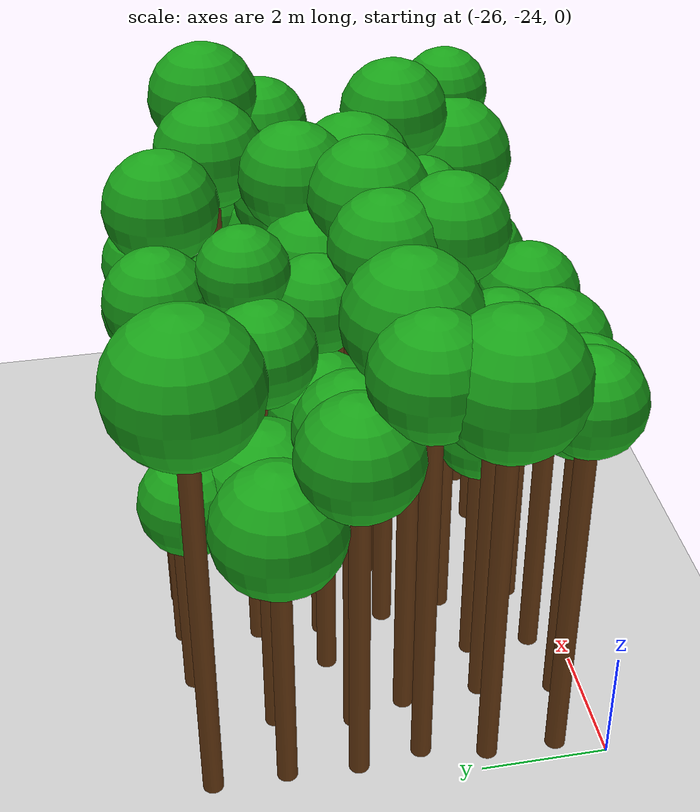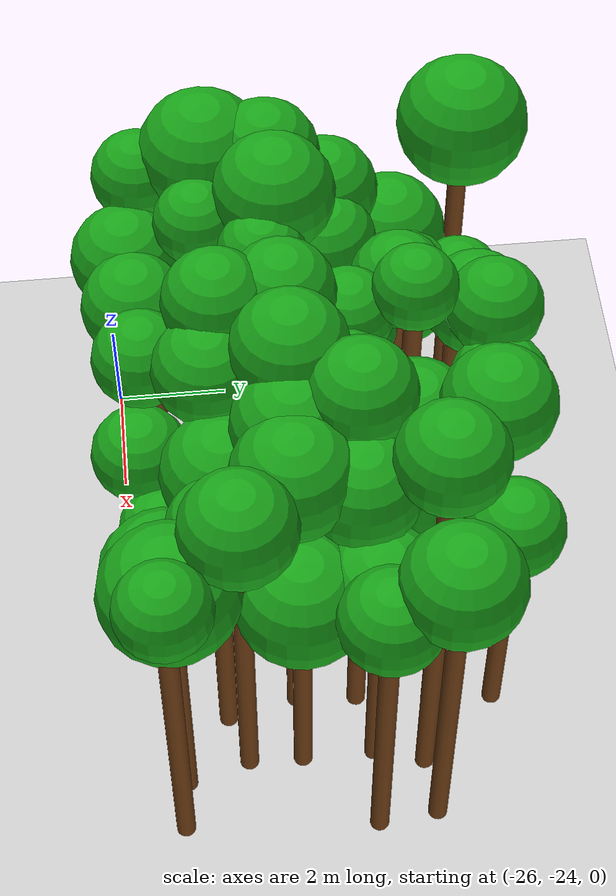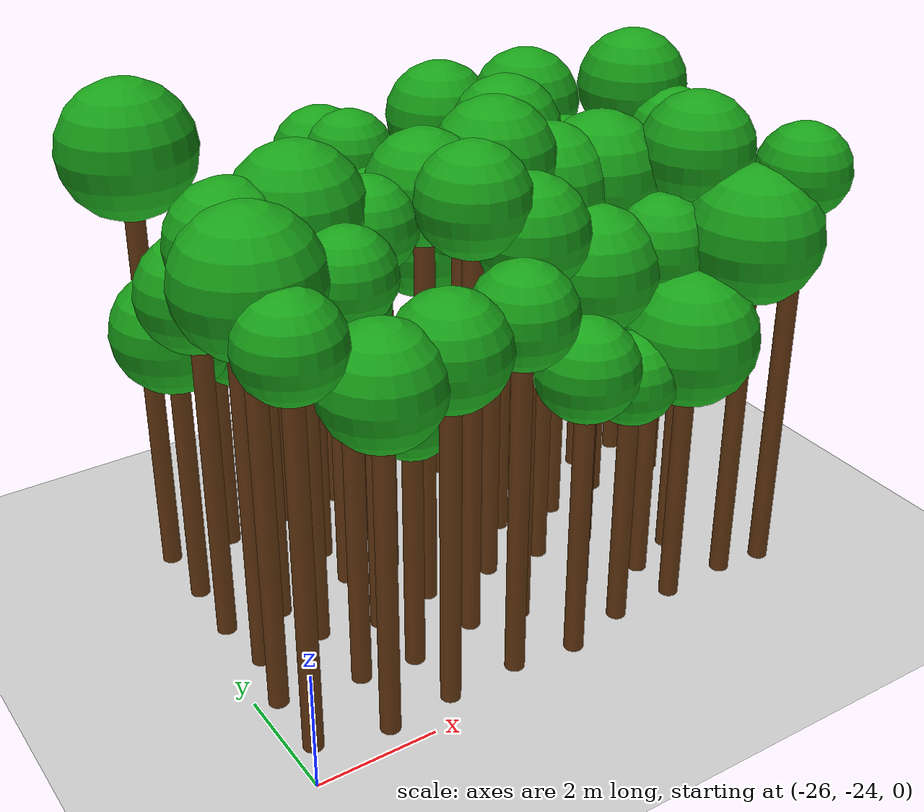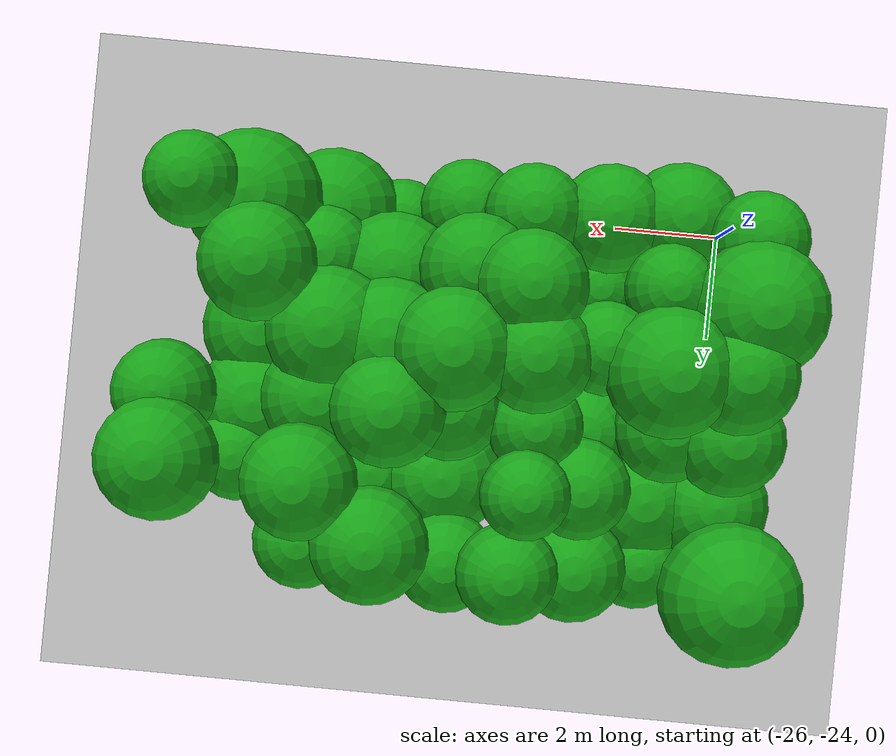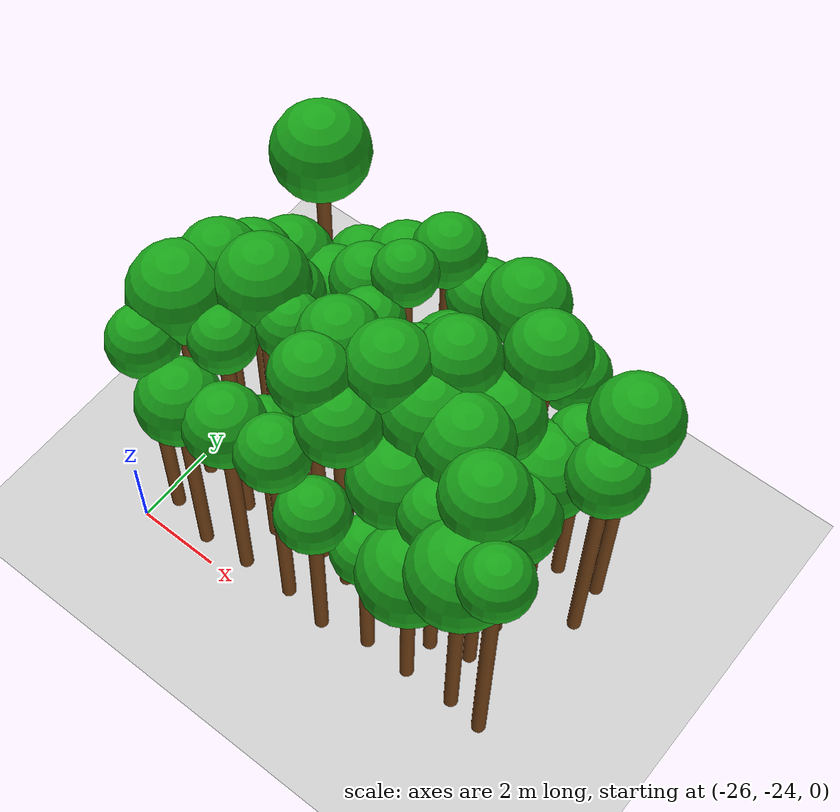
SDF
<sdf version="1.6">
 <world name="forest_world">
  <include><uri>model://sun</uri></include>
  <include><uri>model://ground_plane</uri></include>
  <model name="tree_226_trunk">
   <static>true</static>
   <pose>-25.66 -23.26 3.09 0 0 0</pose>
   <link name="link">
    <collision name="collision">
     <geometry><cylinder><radius>0.16</radius><length>6.19</length></cylinder></geometry>
    </collision>
    <visual name="visual">
     <geometry><cylinder><radius>0.16</radius><length>6.19</length></cylinder></geometry>
     <material><ambient>0.35 0.20 0.05 1</ambient><diffuse>0.45 0.25 0.08 1</diffuse></material>
    </visual>
   </link>
  </model>
  <model name="tree_226_leaf">
   <static>true</static>
   <pose>-25.66 -23.26 6.65 0 0 0</pose>
   <link name="link">
    <collision name="collision"><geometry><sphere><radius>0.78</radius></sphere></geometry></collision>
    <visual name="visual">
     <geometry><sphere><radius>0.78</radius></sphere></geometry>
     <material><ambient>0.05 0.45 0.05 1</ambient><diffuse>0.10 0.65 0.10 1</diffuse></material>
    </visual>
   </link>
  </model>
  <model name="tree_227_trunk">
   <static>true</static>
   <pose>-25.66 -22.15 3.23 0 0 0</pose>
   <link name="link">
    <collision name="collision">
     <geometry><cylinder><radius>0.16</radius><length>6.45</length></cylinder></geometry>
    </collision>
    <visual name="visual">
     <geometry><cylinder><radius>0.16</radius><length>6.45</length></cylinder></geometry>
     <material><ambient>0.35 0.20 0.05 1</ambient><diffuse>0.45 0.25 0.08 1</diffuse></material>
    </visual>
   </link>
  </model>
  <model name="tree_227_leaf">
   <static>true</static>
   <pose>-25.66 -22.15 7.10 0 0 0</pose>
   <link name="link">
    <collision name="collision"><geometry><sphere><radius>1.08</radius></sphere></geometry></collision>
    <visual name="visual">
     <geometry><sphere><radius>1.08</radius></sphere></geometry>
     <material><ambient>0.05 0.45 0.05 1</ambient><diffuse>0.10 0.65 0.10 1</diffuse></material>
    </visual>
   </link>
  </model>
  <model name="tree_228_trunk">
   <static>true</static>
   <pose>-25.44 -21.14 3.33 0 0 0</pose>
   <link name="link">
    <collision name="collision">
     <geometry><cylinder><radius>0.16</radius><length>6.65</length></cylinder></geometry>
    </collision>
    <visual name="visual">
     <geometry><cylinder><radius>0.16</radius><length>6.65</length></cylinder></geometry>
     <material><ambient>0.35 0.20 0.05 1</ambient><diffuse>0.45 0.25 0.08 1</diffuse></material>
    </visual>
   </link>
  </model>
  <model name="tree_228_leaf">
   <static>true</static>
   <pose>-25.44 -21.14 7.21 0 0 0</pose>
   <link name="link">
    <collision name="collision"><geometry><sphere><radius>0.92</radius></sphere></geometry></collision>
    <visual name="visual">
     <geometry><sphere><radius>0.92</radius></sphere></geometry>
     <material><ambient>0.05 0.45 0.05 1</ambient><diffuse>0.10 0.65 0.10 1</diffuse></material>
    </visual>
   </link>
  </model>
  <model name="tree_229_trunk">
   <static>true</static>
   <pose>-25.57 -20.13 2.77 0 0 0</pose>
   <link name="link">
    <collision name="collision">
     <geometry><cylinder><radius>0.16</radius><length>5.55</length></cylinder></geometry>
    </collision>
    <visual name="visual">
     <geometry><cylinder><radius>0.16</radius><length>5.55</length></cylinder></geometry>
     <material><ambient>0.35 0.20 0.05 1</ambient><diffuse>0.45 0.25 0.08 1</diffuse></material>
    </visual>
   </link>
  </model>
  <model name="tree_229_leaf">
   <static>true</static>
   <pose>-25.57 -20.13 6.09 0 0 0</pose>
   <link name="link">
    <collision name="collision"><geometry><sphere><radius>0.91</radius></sphere></geometry></collision>
    <visual name="visual">
     <geometry><sphere><radius>0.91</radius></sphere></geometry>
     <material><ambient>0.05 0.45 0.05 1</ambient><diffuse>0.10 0.65 0.10 1</diffuse></material>
    </visual>
   </link>
  </model>
  <model name="tree_230_trunk">
   <static>true</static>
   <pose>-25.53 -19.01 2.20 0 0 0</pose>
   <link name="link">
    <collision name="collision">
     <geometry><cylinder><radius>0.16</radius><length>4.39</length></cylinder></geometry>
    </collision>
    <visual name="visual">
     <geometry><cylinder><radius>0.16</radius><length>4.39</length></cylinder></geometry>
     <material><ambient>0.35 0.20 0.05 1</ambient><diffuse>0.45 0.25 0.08 1</diffuse></material>
    </visual>
   </link>
  </model>
  <model name="tree_230_leaf">
   <static>true</static>
   <pose>-25.53 -19.01 4.98 0 0 0</pose>
   <link name="link">
    <collision name="collision"><geometry><sphere><radius>0.99</radius></sphere></geometry></collision>
    <visual name="visual">
     <geometry><sphere><radius>0.99</radius></sphere></geometry>
     <material><ambient>0.05 0.45 0.05 1</ambient><diffuse>0.10 0.65 0.10 1</diffuse></material>
    </visual>
   </link>
  </model>
  <model name="tree_231_trunk">
   <static>true</static>
   <pose>-25.54 -17.86 3.44 0 0 0</pose>
   <link name="link">
    <collision name="collision">
     <geometry><cylinder><radius>0.16</radius><length>6.88</length></cylinder></geometry>
    </collision>
    <visual name="visual">
     <geometry><cylinder><radius>0.16</radius><length>6.88</length></cylinder></geometry>
     <material><ambient>0.35 0.20 0.05 1</ambient><diffuse>0.45 0.25 0.08 1</diffuse></material>
    </visual>
   </link>
  </model>
  <model name="tree_231_leaf">
   <static>true</static>
   <pose>-25.54 -17.86 7.53 0 0 0</pose>
   <link name="link">
    <collision name="collision"><geometry><sphere><radius>1.09</radius></sphere></geometry></collision>
    <visual name="visual">
     <geometry><sphere><radius>1.09</radius></sphere></geometry>
     <material><ambient>0.05 0.45 0.05 1</ambient><diffuse>0.10 0.65 0.10 1</diffuse></material>
    </visual>
   </link>
  </model>
  <model name="tree_281_trunk">
   <static>true</static>
   <pose>-24.52 -23.56 2.67 0 0 0</pose>
   <link name="link">
    <collision name="collision">
     <geometry><cylinder><radius>0.16</radius><length>5.33</length></cylinder></geometry>
    </collision>
    <visual name="visual">
     <geometry><cylinder><radius>0.16</radius><length>5.33</length></cylinder></geometry>
     <material><ambient>0.35 0.20 0.05 1</ambient><diffuse>0.45 0.25 0.08 1</diffuse></material>
    </visual>
   </link>
  </model>
  <model name="tree_281_leaf">
   <static>true</static>
   <pose>-24.52 -23.56 5.88 0 0 0</pose>
   <link name="link">
    <collision name="collision"><geometry><sphere><radius>0.92</radius></sphere></geometry></collision>
    <visual name="visual">
     <geometry><sphere><radius>0.92</radius></sphere></geometry>
     <material><ambient>0.05 0.45 0.05 1</ambient><diffuse>0.10 0.65 0.10 1</diffuse></material>
    </visual>
   </link>
  </model>
  <model name="tree_282_trunk">
   <static>true</static>
   <pose>-24.32 -22.35 3.23 0 0 0</pose>
   <link name="link">
    <collision name="collision">
     <geometry><cylinder><radius>0.16</radius><length>6.46</length></cylinder></geometry>
    </collision>
    <visual name="visual">
     <geometry><cylinder><radius>0.16</radius><length>6.46</length></cylinder></geometry>
     <material><ambient>0.35 0.20 0.05 1</ambient><diffuse>0.45 0.25 0.08 1</diffuse></material>
    </visual>
   </link>
  </model>
  <model name="tree_282_leaf">
   <static>true</static>
   <pose>-24.32 -22.35 6.90 0 0 0</pose>
   <link name="link">
    <collision name="collision"><geometry><sphere><radius>0.72</radius></sphere></geometry></collision>
    <visual name="visual">
     <geometry><sphere><radius>0.72</radius></sphere></geometry>
     <material><ambient>0.05 0.45 0.05 1</ambient><diffuse>0.10 0.65 0.10 1</diffuse></material>
    </visual>
   </link>
  </model>
  <model name="tree_283_trunk">
   <static>true</static>
   <pose>-24.37 -21.08 3.40 0 0 0</pose>
   <link name="link">
    <collision name="collision">
     <geometry><cylinder><radius>0.16</radius><length>6.80</length></cylinder></geometry>
    </collision>
    <visual name="visual">
     <geometry><cylinder><radius>0.16</radius><length>6.80</length></cylinder></geometry>
     <material><ambient>0.35 0.20 0.05 1</ambient><diffuse>0.45 0.25 0.08 1</diffuse></material>
    </visual>
   </link>
  </model>
  <model name="tree_283_leaf">
   <static>true</static>
   <pose>-24.37 -21.08 7.41 0 0 0</pose>
   <link name="link">
    <collision name="collision"><geometry><sphere><radius>1.01</radius></sphere></geometry></collision>
    <visual name="visual">
     <geometry><sphere><radius>1.01</radius></sphere></geometry>
     <material><ambient>0.05 0.45 0.05 1</ambient><diffuse>0.10 0.65 0.10 1</diffuse></material>
    </visual>
   </link>
  </model>
  <model name="tree_284_trunk">
   <static>true</static>
   <pose>-24.62 -20.22 2.65 0 0 0</pose>
   <link name="link">
    <collision name="collision">
     <geometry><cylinder><radius>0.16</radius><length>5.30</length></cylinder></geometry>
    </collision>
    <visual name="visual">
     <geometry><cylinder><radius>0.16</radius><length>5.30</length></cylinder></geometry>
     <material><ambient>0.35 0.20 0.05 1</ambient><diffuse>0.45 0.25 0.08 1</diffuse></material>
    </visual>
   </link>
  </model>
  <model name="tree_284_leaf">
   <static>true</static>
   <pose>-24.62 -20.22 5.82 0 0 0</pose>
   <link name="link">
    <collision name="collision"><geometry><sphere><radius>0.88</radius></sphere></geometry></collision>
    <visual name="visual">
     <geometry><sphere><radius>0.88</radius></sphere></geometry>
     <material><ambient>0.05 0.45 0.05 1</ambient><diffuse>0.10 0.65 0.10 1</diffuse></material>
    </visual>
   </link>
  </model>
  <model name="tree_285_trunk">
   <static>true</static>
   <pose>-24.39 -18.99 2.09 0 0 0</pose>
   <link name="link">
    <collision name="collision">
     <geometry><cylinder><radius>0.16</radius><length>4.17</length></cylinder></geometry>
    </collision>
    <visual name="visual">
     <geometry><cylinder><radius>0.16</radius><length>4.17</length></cylinder></geometry>
     <material><ambient>0.35 0.20 0.05 1</ambient><diffuse>0.45 0.25 0.08 1</diffuse></material>
    </visual>
   </link>
  </model>
  <model name="tree_285_leaf">
   <static>true</static>
   <pose>-24.39 -18.99 4.79 0 0 0</pose>
   <link name="link">
    <collision name="collision"><geometry><sphere><radius>1.03</radius></sphere></geometry></collision>
    <visual name="visual">
     <geometry><sphere><radius>1.03</radius></sphere></geometry>
     <material><ambient>0.05 0.45 0.05 1</ambient><diffuse>0.10 0.65 0.10 1</diffuse></material>
    </visual>
   </link>
  </model>
  <model name="tree_286_trunk">
   <static>true</static>
   <pose>-24.44 -17.92 2.14 0 0 0</pose>
   <link name="link">
    <collision name="collision">
     <geometry><cylinder><radius>0.16</radius><length>4.27</length></cylinder></geometry>
    </collision>
    <visual name="visual">
     <geometry><cylinder><radius>0.16</radius><length>4.27</length></cylinder></geometry>
     <material><ambient>0.35 0.20 0.05 1</ambient><diffuse>0.45 0.25 0.08 1</diffuse></material>
    </visual>
   </link>
  </model>
  <model name="tree_286_leaf">
   <static>true</static>
   <pose>-24.44 -17.92 4.74 0 0 0</pose>
   <link name="link">
    <collision name="collision"><geometry><sphere><radius>0.78</radius></sphere></geometry></collision>
    <visual name="visual">
     <geometry><sphere><radius>0.78</radius></sphere></geometry>
     <material><ambient>0.05 0.45 0.05 1</ambient><diffuse>0.10 0.65 0.10 1</diffuse></material>
    </visual>
   </link>
  </model>
  <model name="tree_336_trunk">
   <static>true</static>
   <pose>-23.39 -23.46 2.74 0 0 0</pose>
   <link name="link">
    <collision name="collision">
     <geometry><cylinder><radius>0.16</radius><length>5.48</length></cylinder></geometry>
    </collision>
    <visual name="visual">
     <geometry><cylinder><radius>0.16</radius><length>5.48</length></cylinder></geometry>
     <material><ambient>0.35 0.20 0.05 1</ambient><diffuse>0.45 0.25 0.08 1</diffuse></material>
    </visual>
   </link>
  </model>
  <model name="tree_336_leaf">
   <static>true</static>
   <pose>-23.39 -23.46 6.01 0 0 0</pose>
   <link name="link">
    <collision name="collision"><geometry><sphere><radius>0.88</radius></sphere></geometry></collision>
    <visual name="visual">
     <geometry><sphere><radius>0.88</radius></sphere></geometry>
     <material><ambient>0.05 0.45 0.05 1</ambient><diffuse>0.10 0.65 0.10 1</diffuse></material>
    </visual>
   </link>
  </model>
  <model name="tree_337_trunk">
   <static>true</static>
   <pose>-23.39 -22.43 2.06 0 0 0</pose>
   <link name="link">
    <collision name="collision">
     <geometry><cylinder><radius>0.16</radius><length>4.11</length></cylinder></geometry>
    </collision>
    <visual name="visual">
     <geometry><cylinder><radius>0.16</radius><length>4.11</length></cylinder></geometry>
     <material><ambient>0.35 0.20 0.05 1</ambient><diffuse>0.45 0.25 0.08 1</diffuse></material>
    </visual>
   </link>
  </model>
  <model name="tree_337_leaf">
   <static>true</static>
   <pose>-23.39 -22.43 4.54 0 0 0</pose>
   <link name="link">
    <collision name="collision"><geometry><sphere><radius>0.71</radius></sphere></geometry></collision>
    <visual name="visual">
     <geometry><sphere><radius>0.71</radius></sphere></geometry>
     <material><ambient>0.05 0.45 0.05 1</ambient><diffuse>0.10 0.65 0.10 1</diffuse></material>
    </visual>
   </link>
  </model>
  <model name="tree_338_trunk">
   <static>true</static>
   <pose>-23.40 -21.36 3.32 0 0 0</pose>
   <link name="link">
    <collision name="collision">
     <geometry><cylinder><radius>0.16</radius><length>6.63</length></cylinder></geometry>
    </collision>
    <visual name="visual">
     <geometry><cylinder><radius>0.16</radius><length>6.63</length></cylinder></geometry>
     <material><ambient>0.35 0.20 0.05 1</ambient><diffuse>0.45 0.25 0.08 1</diffuse></material>
    </visual>
   </link>
  </model>
  <model name="tree_338_leaf">
   <static>true</static>
   <pose>-23.40 -21.36 7.07 0 0 0</pose>
   <link name="link">
    <collision name="collision"><geometry><sphere><radius>0.73</radius></sphere></geometry></collision>
    <visual name="visual">
     <geometry><sphere><radius>0.73</radius></sphere></geometry>
     <material><ambient>0.05 0.45 0.05 1</ambient><diffuse>0.10 0.65 0.10 1</diffuse></material>
    </visual>
   </link>
  </model>
  <model name="tree_339_trunk">
   <static>true</static>
   <pose>-23.27 -20.02 2.35 0 0 0</pose>
   <link name="link">
    <collision name="collision">
     <geometry><cylinder><radius>0.16</radius><length>4.69</length></cylinder></geometry>
    </collision>
    <visual name="visual">
     <geometry><cylinder><radius>0.16</radius><length>4.69</length></cylinder></geometry>
     <material><ambient>0.35 0.20 0.05 1</ambient><diffuse>0.45 0.25 0.08 1</diffuse></material>
    </visual>
   </link>
  </model>
  <model name="tree_339_leaf">
   <static>true</static>
   <pose>-23.27 -20.02 5.23 0 0 0</pose>
   <link name="link">
    <collision name="collision"><geometry><sphere><radius>0.89</radius></sphere></geometry></collision>
    <visual name="visual">
     <geometry><sphere><radius>0.89</radius></sphere></geometry>
     <material><ambient>0.05 0.45 0.05 1</ambient><diffuse>0.10 0.65 0.10 1</diffuse></material>
    </visual>
   </link>
  </model>
  <model name="tree_340_trunk">
   <static>true</static>
   <pose>-23.26 -19.15 2.93 0 0 0</pose>
   <link name="link">
    <collision name="collision">
     <geometry><cylinder><radius>0.16</radius><length>5.85</length></cylinder></geometry>
    </collision>
    <visual name="visual">
     <geometry><cylinder><radius>0.16</radius><length>5.85</length></cylinder></geometry>
     <material><ambient>0.35 0.20 0.05 1</ambient><diffuse>0.45 0.25 0.08 1</diffuse></material>
    </visual>
   </link>
  </model>
  <model name="tree_340_leaf">
   <static>true</static>
   <pose>-23.26 -19.15 6.34 0 0 0</pose>
   <link name="link">
    <collision name="collision"><geometry><sphere><radius>0.81</radius></sphere></geometry></collision>
    <visual name="visual">
     <geometry><sphere><radius>0.81</radius></sphere></geometry>
     <material><ambient>0.05 0.45 0.05 1</ambient><diffuse>0.10 0.65 0.10 1</diffuse></material>
    </visual>
   </link>
  </model>
  <model name="tree_341_trunk">
   <static>true</static>
   <pose>-23.31 -17.81 2.50 0 0 0</pose>
   <link name="link">
    <collision name="collision">
     <geometry><cylinder><radius>0.16</radius><length>5.00</length></cylinder></geometry>
    </collision>
    <visual name="visual">
     <geometry><cylinder><radius>0.16</radius><length>5.00</length></cylinder></geometry>
     <material><ambient>0.35 0.20 0.05 1</ambient><diffuse>0.45 0.25 0.08 1</diffuse></material>
    </visual>
   </link>
  </model>
  <model name="tree_341_leaf">
   <static>true</static>
   <pose>-23.31 -17.81 5.53 0 0 0</pose>
   <link name="link">
    <collision name="collision"><geometry><sphere><radius>0.89</radius></sphere></geometry></collision>
    <visual name="visual">
     <geometry><sphere><radius>0.89</radius></sphere></geometry>
     <material><ambient>0.05 0.45 0.05 1</ambient><diffuse>0.10 0.65 0.10 1</diffuse></material>
    </visual>
   </link>
  </model>
  <model name="tree_391_trunk">
   <static>true</static>
   <pose>-22.16 -23.41 2.85 0 0 0</pose>
   <link name="link">
    <collision name="collision">
     <geometry><cylinder><radius>0.16</radius><length>5.70</length></cylinder></geometry>
    </collision>
    <visual name="visual">
     <geometry><cylinder><radius>0.16</radius><length>5.70</length></cylinder></geometry>
     <material><ambient>0.35 0.20 0.05 1</ambient><diffuse>0.45 0.25 0.08 1</diffuse></material>
    </visual>
   </link>
  </model>
  <model name="tree_391_leaf">
   <static>true</static>
   <pose>-22.16 -23.41 6.18 0 0 0</pose>
   <link name="link">
    <collision name="collision"><geometry><sphere><radius>0.80</radius></sphere></geometry></collision>
    <visual name="visual">
     <geometry><sphere><radius>0.80</radius></sphere></geometry>
     <material><ambient>0.05 0.45 0.05 1</ambient><diffuse>0.10 0.65 0.10 1</diffuse></material>
    </visual>
   </link>
  </model>
  <model name="tree_392_trunk">
   <static>true</static>
   <pose>-22.18 -22.18 3.47 0 0 0</pose>
   <link name="link">
    <collision name="collision">
     <geometry><cylinder><radius>0.16</radius><length>6.94</length></cylinder></geometry>
    </collision>
    <visual name="visual">
     <geometry><cylinder><radius>0.16</radius><length>6.94</length></cylinder></geometry>
     <material><ambient>0.35 0.20 0.05 1</ambient><diffuse>0.45 0.25 0.08 1</diffuse></material>
    </visual>
   </link>
  </model>
  <model name="tree_392_leaf">
   <static>true</static>
   <pose>-22.18 -22.18 7.46 0 0 0</pose>
   <link name="link">
    <collision name="collision"><geometry><sphere><radius>0.86</radius></sphere></geometry></collision>
    <visual name="visual">
     <geometry><sphere><radius>0.86</radius></sphere></geometry>
     <material><ambient>0.05 0.45 0.05 1</ambient><diffuse>0.10 0.65 0.10 1</diffuse></material>
    </visual>
   </link>
  </model>
  <model name="tree_393_trunk">
   <static>true</static>
   <pose>-22.35 -21.14 3.41 0 0 0</pose>
   <link name="link">
    <collision name="collision">
     <geometry><cylinder><radius>0.16</radius><length>6.81</length></cylinder></geometry>
    </collision>
    <visual name="visual">
     <geometry><cylinder><radius>0.16</radius><length>6.81</length></cylinder></geometry>
     <material><ambient>0.35 0.20 0.05 1</ambient><diffuse>0.45 0.25 0.08 1</diffuse></material>
    </visual>
   </link>
  </model>
  <model name="tree_393_leaf">
   <static>true</static>
   <pose>-22.35 -21.14 7.34 0 0 0</pose>
   <link name="link">
    <collision name="collision"><geometry><sphere><radius>0.88</radius></sphere></geometry></collision>
    <visual name="visual">
     <geometry><sphere><radius>0.88</radius></sphere></geometry>
     <material><ambient>0.05 0.45 0.05 1</ambient><diffuse>0.10 0.65 0.10 1</diffuse></material>
    </visual>
   </link>
  </model>
  <model name="tree_394_trunk">
   <static>true</static>
   <pose>-22.46 -20.07 3.05 0 0 0</pose>
   <link name="link">
    <collision name="collision">
     <geometry><cylinder><radius>0.16</radius><length>6.10</length></cylinder></geometry>
    </collision>
    <visual name="visual">
     <geometry><cylinder><radius>0.16</radius><length>6.10</length></cylinder></geometry>
     <material><ambient>0.35 0.20 0.05 1</ambient><diffuse>0.45 0.25 0.08 1</diffuse></material>
    </visual>
   </link>
  </model>
  <model name="tree_394_leaf">
   <static>true</static>
   <pose>-22.46 -20.07 6.56 0 0 0</pose>
   <link name="link">
    <collision name="collision"><geometry><sphere><radius>0.76</radius></sphere></geometry></collision>
    <visual name="visual">
     <geometry><sphere><radius>0.76</radius></sphere></geometry>
     <material><ambient>0.05 0.45 0.05 1</ambient><diffuse>0.10 0.65 0.10 1</diffuse></material>
    </visual>
   </link>
  </model>
  <model name="tree_395_trunk">
   <static>true</static>
   <pose>-22.38 -19.02 3.38 0 0 0</pose>
   <link name="link">
    <collision name="collision">
     <geometry><cylinder><radius>0.16</radius><length>6.76</length></cylinder></geometry>
    </collision>
    <visual name="visual">
     <geometry><cylinder><radius>0.16</radius><length>6.76</length></cylinder></geometry>
     <material><ambient>0.35 0.20 0.05 1</ambient><diffuse>0.45 0.25 0.08 1</diffuse></material>
    </visual>
   </link>
  </model>
  <model name="tree_395_leaf">
   <static>true</static>
   <pose>-22.38 -19.02 7.18 0 0 0</pose>
   <link name="link">
    <collision name="collision"><geometry><sphere><radius>0.70</radius></sphere></geometry></collision>
    <visual name="visual">
     <geometry><sphere><radius>0.70</radius></sphere></geometry>
     <material><ambient>0.05 0.45 0.05 1</ambient><diffuse>0.10 0.65 0.10 1</diffuse></material>
    </visual>
   </link>
  </model>
  <model name="tree_396_trunk">
   <static>true</static>
   <pose>-22.23 -17.76 3.14 0 0 0</pose>
   <link name="link">
    <collision name="collision">
     <geometry><cylinder><radius>0.16</radius><length>6.27</length></cylinder></geometry>
    </collision>
    <visual name="visual">
     <geometry><cylinder><radius>0.16</radius><length>6.27</length></cylinder></geometry>
     <material><ambient>0.35 0.20 0.05 1</ambient><diffuse>0.45 0.25 0.08 1</diffuse></material>
    </visual>
   </link>
  </model>
  <model name="tree_396_leaf">
   <static>true</static>
   <pose>-22.23 -17.76 6.75 0 0 0</pose>
   <link name="link">
    <collision name="collision"><geometry><sphere><radius>0.80</radius></sphere></geometry></collision>
    <visual name="visual">
     <geometry><sphere><radius>0.80</radius></sphere></geometry>
     <material><ambient>0.05 0.45 0.05 1</ambient><diffuse>0.10 0.65 0.10 1</diffuse></material>
    </visual>
   </link>
  </model>
  <model name="tree_446_trunk">
   <static>true</static>
   <pose>-21.10 -23.54 2.30 0 0 0</pose>
   <link name="link">
    <collision name="collision">
     <geometry><cylinder><radius>0.16</radius><length>4.59</length></cylinder></geometry>
    </collision>
    <visual name="visual">
     <geometry><cylinder><radius>0.16</radius><length>4.59</length></cylinder></geometry>
     <material><ambient>0.35 0.20 0.05 1</ambient><diffuse>0.45 0.25 0.08 1</diffuse></material>
    </visual>
   </link>
  </model>
  <model name="tree_446_leaf">
   <static>true</static>
   <pose>-21.10 -23.54 5.07 0 0 0</pose>
   <link name="link">
    <collision name="collision"><geometry><sphere><radius>0.80</radius></sphere></geometry></collision>
    <visual name="visual">
     <geometry><sphere><radius>0.80</radius></sphere></geometry>
     <material><ambient>0.05 0.45 0.05 1</ambient><diffuse>0.10 0.65 0.10 1</diffuse></material>
    </visual>
   </link>
  </model>
  <model name="tree_447_trunk">
   <static>true</static>
   <pose>-21.33 -22.38 3.15 0 0 0</pose>
   <link name="link">
    <collision name="collision">
     <geometry><cylinder><radius>0.16</radius><length>6.30</length></cylinder></geometry>
    </collision>
    <visual name="visual">
     <geometry><cylinder><radius>0.16</radius><length>6.30</length></cylinder></geometry>
     <material><ambient>0.35 0.20 0.05 1</ambient><diffuse>0.45 0.25 0.08 1</diffuse></material>
    </visual>
   </link>
  </model>
  <model name="tree_447_leaf">
   <static>true</static>
   <pose>-21.33 -22.38 6.84 0 0 0</pose>
   <link name="link">
    <collision name="collision"><geometry><sphere><radius>0.89</radius></sphere></geometry></collision>
    <visual name="visual">
     <geometry><sphere><radius>0.89</radius></sphere></geometry>
     <material><ambient>0.05 0.45 0.05 1</ambient><diffuse>0.10 0.65 0.10 1</diffuse></material>
    </visual>
   </link>
  </model>
  <model name="tree_448_trunk">
   <static>true</static>
   <pose>-21.11 -21.12 3.47 0 0 0</pose>
   <link name="link">
    <collision name="collision">
     <geometry><cylinder><radius>0.16</radius><length>6.94</length></cylinder></geometry>
    </collision>
    <visual name="visual">
     <geometry><cylinder><radius>0.16</radius><length>6.94</length></cylinder></geometry>
     <material><ambient>0.35 0.20 0.05 1</ambient><diffuse>0.45 0.25 0.08 1</diffuse></material>
    </visual>
   </link>
  </model>
  <model name="tree_448_leaf">
   <static>true</static>
   <pose>-21.11 -21.12 7.51 0 0 0</pose>
   <link name="link">
    <collision name="collision"><geometry><sphere><radius>0.95</radius></sphere></geometry></collision>
    <visual name="visual">
     <geometry><sphere><radius>0.95</radius></sphere></geometry>
     <material><ambient>0.05 0.45 0.05 1</ambient><diffuse>0.10 0.65 0.10 1</diffuse></material>
    </visual>
   </link>
  </model>
  <model name="tree_449_trunk">
   <static>true</static>
   <pose>-21.11 -20.25 2.99 0 0 0</pose>
   <link name="link">
    <collision name="collision">
     <geometry><cylinder><radius>0.16</radius><length>5.98</length></cylinder></geometry>
    </collision>
    <visual name="visual">
     <geometry><cylinder><radius>0.16</radius><length>5.98</length></cylinder></geometry>
     <material><ambient>0.35 0.20 0.05 1</ambient><diffuse>0.45 0.25 0.08 1</diffuse></material>
    </visual>
   </link>
  </model>
  <model name="tree_449_leaf">
   <static>true</static>
   <pose>-21.11 -20.25 6.50 0 0 0</pose>
   <link name="link">
    <collision name="collision"><geometry><sphere><radius>0.86</radius></sphere></geometry></collision>
    <visual name="visual">
     <geometry><sphere><radius>0.86</radius></sphere></geometry>
     <material><ambient>0.05 0.45 0.05 1</ambient><diffuse>0.10 0.65 0.10 1</diffuse></material>
    </visual>
   </link>
  </model>
  <model name="tree_450_trunk">
   <static>true</static>
   <pose>-21.09 -19.10 2.43 0 0 0</pose>
   <link name="link">
    <collision name="collision">
     <geometry><cylinder><radius>0.16</radius><length>4.86</length></cylinder></geometry>
    </collision>
    <visual name="visual">
     <geometry><cylinder><radius>0.16</radius><length>4.86</length></cylinder></geometry>
     <material><ambient>0.35 0.20 0.05 1</ambient><diffuse>0.45 0.25 0.08 1</diffuse></material>
    </visual>
   </link>
  </model>
  <model name="tree_450_leaf">
   <static>true</static>
   <pose>-21.09 -19.10 5.46 0 0 0</pose>
   <link name="link">
    <collision name="collision"><geometry><sphere><radius>0.99</radius></sphere></geometry></collision>
    <visual name="visual">
     <geometry><sphere><radius>0.99</radius></sphere></geometry>
     <material><ambient>0.05 0.45 0.05 1</ambient><diffuse>0.10 0.65 0.10 1</diffuse></material>
    </visual>
   </link>
  </model>
  <model name="tree_451_trunk">
   <static>true</static>
   <pose>-21.27 -17.77 2.75 0 0 0</pose>
   <link name="link">
    <collision name="collision">
     <geometry><cylinder><radius>0.16</radius><length>5.51</length></cylinder></geometry>
    </collision>
    <visual name="visual">
     <geometry><cylinder><radius>0.16</radius><length>5.51</length></cylinder></geometry>
     <material><ambient>0.35 0.20 0.05 1</ambient><diffuse>0.45 0.25 0.08 1</diffuse></material>
    </visual>
   </link>
  </model>
  <model name="tree_451_leaf">
   <static>true</static>
   <pose>-21.27 -17.77 6.00 0 0 0</pose>
   <link name="link">
    <collision name="collision"><geometry><sphere><radius>0.82</radius></sphere></geometry></collision>
    <visual name="visual">
     <geometry><sphere><radius>0.82</radius></sphere></geometry>
     <material><ambient>0.05 0.45 0.05 1</ambient><diffuse>0.10 0.65 0.10 1</diffuse></material>
    </visual>
   </link>
  </model>
  <model name="tree_501_trunk">
   <static>true</static>
   <pose>-20.01 -23.26 2.01 0 0 0</pose>
   <link name="link">
    <collision name="collision">
     <geometry><cylinder><radius>0.16</radius><length>4.03</length></cylinder></geometry>
    </collision>
    <visual name="visual">
     <geometry><cylinder><radius>0.16</radius><length>4.03</length></cylinder></geometry>
     <material><ambient>0.35 0.20 0.05 1</ambient><diffuse>0.45 0.25 0.08 1</diffuse></material>
    </visual>
   </link>
  </model>
  <model name="tree_501_leaf">
   <static>true</static>
   <pose>-20.01 -23.26 4.46 0 0 0</pose>
   <link name="link">
    <collision name="collision"><geometry><sphere><radius>0.73</radius></sphere></geometry></collision>
    <visual name="visual">
     <geometry><sphere><radius>0.73</radius></sphere></geometry>
     <material><ambient>0.05 0.45 0.05 1</ambient><diffuse>0.10 0.65 0.10 1</diffuse></material>
    </visual>
   </link>
  </model>
  <model name="tree_502_trunk">
   <static>true</static>
   <pose>-20.03 -22.26 2.64 0 0 0</pose>
   <link name="link">
    <collision name="collision">
     <geometry><cylinder><radius>0.16</radius><length>5.27</length></cylinder></geometry>
    </collision>
    <visual name="visual">
     <geometry><cylinder><radius>0.16</radius><length>5.27</length></cylinder></geometry>
     <material><ambient>0.35 0.20 0.05 1</ambient><diffuse>0.45 0.25 0.08 1</diffuse></material>
    </visual>
   </link>
  </model>
  <model name="tree_502_leaf">
   <static>true</static>
   <pose>-20.03 -22.26 5.88 0 0 0</pose>
   <link name="link">
    <collision name="collision"><geometry><sphere><radius>1.01</radius></sphere></geometry></collision>
    <visual name="visual">
     <geometry><sphere><radius>1.01</radius></sphere></geometry>
     <material><ambient>0.05 0.45 0.05 1</ambient><diffuse>0.10 0.65 0.10 1</diffuse></material>
    </visual>
   </link>
  </model>
  <model name="tree_503_trunk">
   <static>true</static>
   <pose>-20.11 -21.17 3.15 0 0 0</pose>
   <link name="link">
    <collision name="collision">
     <geometry><cylinder><radius>0.16</radius><length>6.30</length></cylinder></geometry>
    </collision>
    <visual name="visual">
     <geometry><cylinder><radius>0.16</radius><length>6.30</length></cylinder></geometry>
     <material><ambient>0.35 0.20 0.05 1</ambient><diffuse>0.45 0.25 0.08 1</diffuse></material>
    </visual>
   </link>
  </model>
  <model name="tree_503_leaf">
   <static>true</static>
   <pose>-20.11 -21.17 6.89 0 0 0</pose>
   <link name="link">
    <collision name="collision"><geometry><sphere><radius>0.98</radius></sphere></geometry></collision>
    <visual name="visual">
     <geometry><sphere><radius>0.98</radius></sphere></geometry>
     <material><ambient>0.05 0.45 0.05 1</ambient><diffuse>0.10 0.65 0.10 1</diffuse></material>
    </visual>
   </link>
  </model>
  <model name="tree_504_trunk">
   <static>true</static>
   <pose>-20.20 -20.12 3.47 0 0 0</pose>
   <link name="link">
    <collision name="collision">
     <geometry><cylinder><radius>0.16</radius><length>6.94</length></cylinder></geometry>
    </collision>
    <visual name="visual">
     <geometry><cylinder><radius>0.16</radius><length>6.94</length></cylinder></geometry>
     <material><ambient>0.35 0.20 0.05 1</ambient><diffuse>0.45 0.25 0.08 1</diffuse></material>
    </visual>
   </link>
  </model>
  <model name="tree_504_leaf">
   <static>true</static>
   <pose>-20.20 -20.12 7.47 0 0 0</pose>
   <link name="link">
    <collision name="collision"><geometry><sphere><radius>0.88</radius></sphere></geometry></collision>
    <visual name="visual">
     <geometry><sphere><radius>0.88</radius></sphere></geometry>
     <material><ambient>0.05 0.45 0.05 1</ambient><diffuse>0.10 0.65 0.10 1</diffuse></material>
    </visual>
   </link>
  </model>
  <model name="tree_505_trunk">
   <static>true</static>
   <pose>-19.94 -19.09 2.28 0 0 0</pose>
   <link name="link">
    <collision name="collision">
     <geometry><cylinder><radius>0.16</radius><length>4.56</length></cylinder></geometry>
    </collision>
    <visual name="visual">
     <geometry><cylinder><radius>0.16</radius><length>4.56</length></cylinder></geometry>
     <material><ambient>0.35 0.20 0.05 1</ambient><diffuse>0.45 0.25 0.08 1</diffuse></material>
    </visual>
   </link>
  </model>
  <model name="tree_505_leaf">
   <static>true</static>
   <pose>-19.94 -19.09 5.14 0 0 0</pose>
   <link name="link">
    <collision name="collision"><geometry><sphere><radius>0.96</radius></sphere></geometry></collision>
    <visual name="visual">
     <geometry><sphere><radius>0.96</radius></sphere></geometry>
     <material><ambient>0.05 0.45 0.05 1</ambient><diffuse>0.10 0.65 0.10 1</diffuse></material>
    </visual>
   </link>
  </model>
  <model name="tree_506_trunk">
   <static>true</static>
   <pose>-20.09 -18.03 3.27 0 0 0</pose>
   <link name="link">
    <collision name="collision">
     <geometry><cylinder><radius>0.16</radius><length>6.53</length></cylinder></geometry>
    </collision>
    <visual name="visual">
     <geometry><cylinder><radius>0.16</radius><length>6.53</length></cylinder></geometry>
     <material><ambient>0.35 0.20 0.05 1</ambient><diffuse>0.45 0.25 0.08 1</diffuse></material>
    </visual>
   </link>
  </model>
  <model name="tree_506_leaf">
   <static>true</static>
   <pose>-20.09 -18.03 7.08 0 0 0</pose>
   <link name="link">
    <collision name="collision"><geometry><sphere><radius>0.92</radius></sphere></geometry></collision>
    <visual name="visual">
     <geometry><sphere><radius>0.92</radius></sphere></geometry>
     <material><ambient>0.05 0.45 0.05 1</ambient><diffuse>0.10 0.65 0.10 1</diffuse></material>
    </visual>
   </link>
  </model>
  <model name="tree_556_trunk">
   <static>true</static>
   <pose>-18.90 -23.27 2.10 0 0 0</pose>
   <link name="link">
    <collision name="collision">
     <geometry><cylinder><radius>0.16</radius><length>4.19</length></cylinder></geometry>
    </collision>
    <visual name="visual">
     <geometry><cylinder><radius>0.16</radius><length>4.19</length></cylinder></geometry>
     <material><ambient>0.35 0.20 0.05 1</ambient><diffuse>0.45 0.25 0.08 1</diffuse></material>
    </visual>
   </link>
  </model>
  <model name="tree_556_leaf">
   <static>true</static>
   <pose>-18.90 -23.27 4.84 0 0 0</pose>
   <link name="link">
    <collision name="collision"><geometry><sphere><radius>1.08</radius></sphere></geometry></collision>
    <visual name="visual">
     <geometry><sphere><radius>1.08</radius></sphere></geometry>
     <material><ambient>0.05 0.45 0.05 1</ambient><diffuse>0.10 0.65 0.10 1</diffuse></material>
    </visual>
   </link>
  </model>
  <model name="tree_557_trunk">
   <static>true</static>
   <pose>-18.90 -22.44 2.80 0 0 0</pose>
   <link name="link">
    <collision name="collision">
     <geometry><cylinder><radius>0.16</radius><length>5.61</length></cylinder></geometry>
    </collision>
    <visual name="visual">
     <geometry><cylinder><radius>0.16</radius><length>5.61</length></cylinder></geometry>
     <material><ambient>0.35 0.20 0.05 1</ambient><diffuse>0.45 0.25 0.08 1</diffuse></material>
    </visual>
   </link>
  </model>
  <model name="tree_557_leaf">
   <static>true</static>
   <pose>-18.90 -22.44 6.08 0 0 0</pose>
   <link name="link">
    <collision name="collision"><geometry><sphere><radius>0.80</radius></sphere></geometry></collision>
    <visual name="visual">
     <geometry><sphere><radius>0.80</radius></sphere></geometry>
     <material><ambient>0.05 0.45 0.05 1</ambient><diffuse>0.10 0.65 0.10 1</diffuse></material>
    </visual>
   </link>
  </model>
  <model name="tree_558_trunk">
   <static>true</static>
   <pose>-19.17 -21.24 3.15 0 0 0</pose>
   <link name="link">
    <collision name="collision">
     <geometry><cylinder><radius>0.16</radius><length>6.31</length></cylinder></geometry>
    </collision>
    <visual name="visual">
     <geometry><cylinder><radius>0.16</radius><length>6.31</length></cylinder></geometry>
     <material><ambient>0.35 0.20 0.05 1</ambient><diffuse>0.45 0.25 0.08 1</diffuse></material>
    </visual>
   </link>
  </model>
  <model name="tree_558_leaf">
   <static>true</static>
   <pose>-19.17 -21.24 6.90 0 0 0</pose>
   <link name="link">
    <collision name="collision"><geometry><sphere><radius>1.00</radius></sphere></geometry></collision>
    <visual name="visual">
     <geometry><sphere><radius>1.00</radius></sphere></geometry>
     <material><ambient>0.05 0.45 0.05 1</ambient><diffuse>0.10 0.65 0.10 1</diffuse></material>
    </visual>
   </link>
  </model>
  <model name="tree_559_trunk">
   <static>true</static>
   <pose>-19.10 -20.20 2.99 0 0 0</pose>
   <link name="link">
    <collision name="collision">
     <geometry><cylinder><radius>0.16</radius><length>5.99</length></cylinder></geometry>
    </collision>
    <visual name="visual">
     <geometry><cylinder><radius>0.16</radius><length>5.99</length></cylinder></geometry>
     <material><ambient>0.35 0.20 0.05 1</ambient><diffuse>0.45 0.25 0.08 1</diffuse></material>
    </visual>
   </link>
  </model>
  <model name="tree_559_leaf">
   <static>true</static>
   <pose>-19.10 -20.20 6.55 0 0 0</pose>
   <link name="link">
    <collision name="collision"><geometry><sphere><radius>0.94</radius></sphere></geometry></collision>
    <visual name="visual">
     <geometry><sphere><radius>0.94</radius></sphere></geometry>
     <material><ambient>0.05 0.45 0.05 1</ambient><diffuse>0.10 0.65 0.10 1</diffuse></material>
    </visual>
   </link>
  </model>
  <model name="tree_560_trunk">
   <static>true</static>
   <pose>-18.96 -18.91 3.41 0 0 0</pose>
   <link name="link">
    <collision name="collision">
     <geometry><cylinder><radius>0.16</radius><length>6.82</length></cylinder></geometry>
    </collision>
    <visual name="visual">
     <geometry><cylinder><radius>0.16</radius><length>6.82</length></cylinder></geometry>
     <material><ambient>0.35 0.20 0.05 1</ambient><diffuse>0.45 0.25 0.08 1</diffuse></material>
    </visual>
   </link>
  </model>
  <model name="tree_560_leaf">
   <static>true</static>
   <pose>-18.96 -18.91 7.36 0 0 0</pose>
   <link name="link">
    <collision name="collision"><geometry><sphere><radius>0.90</radius></sphere></geometry></collision>
    <visual name="visual">
     <geometry><sphere><radius>0.90</radius></sphere></geometry>
     <material><ambient>0.05 0.45 0.05 1</ambient><diffuse>0.10 0.65 0.10 1</diffuse></material>
    </visual>
   </link>
  </model>
  <model name="tree_561_trunk">
   <static>true</static>
   <pose>-18.90 -17.84 2.46 0 0 0</pose>
   <link name="link">
    <collision name="collision">
     <geometry><cylinder><radius>0.16</radius><length>4.91</length></cylinder></geometry>
    </collision>
    <visual name="visual">
     <geometry><cylinder><radius>0.16</radius><length>4.91</length></cylinder></geometry>
     <material><ambient>0.35 0.20 0.05 1</ambient><diffuse>0.45 0.25 0.08 1</diffuse></material>
    </visual>
   </link>
  </model>
  <model name="tree_561_leaf">
   <static>true</static>
   <pose>-18.90 -17.84 5.40 0 0 0</pose>
   <link name="link">
    <collision name="collision"><geometry><sphere><radius>0.81</radius></sphere></geometry></collision>
    <visual name="visual">
     <geometry><sphere><radius>0.81</radius></sphere></geometry>
     <material><ambient>0.05 0.45 0.05 1</ambient><diffuse>0.10 0.65 0.10 1</diffuse></material>
    </visual>
   </link>
  </model>
  <model name="tree_611_trunk">
   <static>true</static>
   <pose>-17.72 -23.22 2.80 0 0 0</pose>
   <link name="link">
    <collision name="collision">
     <geometry><cylinder><radius>0.16</radius><length>5.59</length></cylinder></geometry>
    </collision>
    <visual name="visual">
     <geometry><cylinder><radius>0.16</radius><length>5.59</length></cylinder></geometry>
     <material><ambient>0.35 0.20 0.05 1</ambient><diffuse>0.45 0.25 0.08 1</diffuse></material>
    </visual>
   </link>
  </model>
  <model name="tree_611_leaf">
   <static>true</static>
   <pose>-17.72 -23.22 6.25 0 0 0</pose>
   <link name="link">
    <collision name="collision"><geometry><sphere><radius>1.10</radius></sphere></geometry></collision>
    <visual name="visual">
     <geometry><sphere><radius>1.10</radius></sphere></geometry>
     <material><ambient>0.05 0.45 0.05 1</ambient><diffuse>0.10 0.65 0.10 1</diffuse></material>
    </visual>
   </link>
  </model>
  <model name="tree_612_trunk">
   <static>true</static>
   <pose>-18.03 -22.15 3.41 0 0 0</pose>
   <link name="link">
    <collision name="collision">
     <geometry><cylinder><radius>0.16</radius><length>6.81</length></cylinder></geometry>
    </collision>
    <visual name="visual">
     <geometry><cylinder><radius>0.16</radius><length>6.81</length></cylinder></geometry>
     <material><ambient>0.35 0.20 0.05 1</ambient><diffuse>0.45 0.25 0.08 1</diffuse></material>
    </visual>
   </link>
  </model>
  <model name="tree_612_leaf">
   <static>true</static>
   <pose>-18.03 -22.15 7.36 0 0 0</pose>
   <link name="link">
    <collision name="collision"><geometry><sphere><radius>0.91</radius></sphere></geometry></collision>
    <visual name="visual">
     <geometry><sphere><radius>0.91</radius></sphere></geometry>
     <material><ambient>0.05 0.45 0.05 1</ambient><diffuse>0.10 0.65 0.10 1</diffuse></material>
    </visual>
   </link>
  </model>
  <model name="tree_613_trunk">
   <static>true</static>
   <pose>-18.01 -21.23 2.32 0 0 0</pose>
   <link name="link">
    <collision name="collision">
     <geometry><cylinder><radius>0.16</radius><length>4.63</length></cylinder></geometry>
    </collision>
    <visual name="visual">
     <geometry><cylinder><radius>0.16</radius><length>4.63</length></cylinder></geometry>
     <material><ambient>0.35 0.20 0.05 1</ambient><diffuse>0.45 0.25 0.08 1</diffuse></material>
    </visual>
   </link>
  </model>
  <model name="tree_613_leaf">
   <static>true</static>
   <pose>-18.01 -21.23 5.27 0 0 0</pose>
   <link name="link">
    <collision name="collision"><geometry><sphere><radius>1.07</radius></sphere></geometry></collision>
    <visual name="visual">
     <geometry><sphere><radius>1.07</radius></sphere></geometry>
     <material><ambient>0.05 0.45 0.05 1</ambient><diffuse>0.10 0.65 0.10 1</diffuse></material>
    </visual>
   </link>
  </model>
  <model name="tree_614_trunk">
   <static>true</static>
   <pose>-18.02 -20.01 2.36 0 0 0</pose>
   <link name="link">
    <collision name="collision">
     <geometry><cylinder><radius>0.16</radius><length>4.72</length></cylinder></geometry>
    </collision>
    <visual name="visual">
     <geometry><cylinder><radius>0.16</radius><length>4.72</length></cylinder></geometry>
     <material><ambient>0.35 0.20 0.05 1</ambient><diffuse>0.45 0.25 0.08 1</diffuse></material>
    </visual>
   </link>
  </model>
  <model name="tree_614_leaf">
   <static>true</static>
   <pose>-18.02 -20.01 5.35 0 0 0</pose>
   <link name="link">
    <collision name="collision"><geometry><sphere><radius>1.04</radius></sphere></geometry></collision>
    <visual name="visual">
     <geometry><sphere><radius>1.04</radius></sphere></geometry>
     <material><ambient>0.05 0.45 0.05 1</ambient><diffuse>0.10 0.65 0.10 1</diffuse></material>
    </visual>
   </link>
  </model>
  <model name="tree_615_trunk">
   <static>true</static>
   <pose>-17.77 -19.16 2.60 0 0 0</pose>
   <link name="link">
    <collision name="collision">
     <geometry><cylinder><radius>0.16</radius><length>5.21</length></cylinder></geometry>
    </collision>
    <visual name="visual">
     <geometry><cylinder><radius>0.16</radius><length>5.21</length></cylinder></geometry>
     <material><ambient>0.35 0.20 0.05 1</ambient><diffuse>0.45 0.25 0.08 1</diffuse></material>
    </visual>
   </link>
  </model>
  <model name="tree_615_leaf">
   <static>true</static>
   <pose>-17.77 -19.16 5.67 0 0 0</pose>
   <link name="link">
    <collision name="collision"><geometry><sphere><radius>0.77</radius></sphere></geometry></collision>
    <visual name="visual">
     <geometry><sphere><radius>0.77</radius></sphere></geometry>
     <material><ambient>0.05 0.45 0.05 1</ambient><diffuse>0.10 0.65 0.10 1</diffuse></material>
    </visual>
   </link>
  </model>
  <model name="tree_666_trunk">
   <static>true</static>
   <pose>-16.90 -23.31 3.35 0 0 0</pose>
   <link name="link">
    <collision name="collision">
     <geometry><cylinder><radius>0.16</radius><length>6.70</length></cylinder></geometry>
    </collision>
    <visual name="visual">
     <geometry><cylinder><radius>0.16</radius><length>6.70</length></cylinder></geometry>
     <material><ambient>0.35 0.20 0.05 1</ambient><diffuse>0.45 0.25 0.08 1</diffuse></material>
    </visual>
   </link>
  </model>
  <model name="tree_666_leaf">
   <static>true</static>
   <pose>-16.90 -23.31 7.15 0 0 0</pose>
   <link name="link">
    <collision name="collision"><geometry><sphere><radius>0.75</radius></sphere></geometry></collision>
    <visual name="visual">
     <geometry><sphere><radius>0.75</radius></sphere></geometry>
     <material><ambient>0.05 0.45 0.05 1</ambient><diffuse>0.10 0.65 0.10 1</diffuse></material>
    </visual>
   </link>
  </model>
  <model name="tree_669_trunk">
   <static>true</static>
   <pose>-16.69 -20.06 3.10 0 0 0</pose>
   <link name="link">
    <collision name="collision">
     <geometry><cylinder><radius>0.16</radius><length>6.20</length></cylinder></geometry>
    </collision>
    <visual name="visual">
     <geometry><cylinder><radius>0.16</radius><length>6.20</length></cylinder></geometry>
     <material><ambient>0.35 0.20 0.05 1</ambient><diffuse>0.45 0.25 0.08 1</diffuse></material>
    </visual>
   </link>
  </model>
  <model name="tree_669_leaf">
   <static>true</static>
   <pose>-16.69 -20.06 6.69 0 0 0</pose>
   <link name="link">
    <collision name="collision"><geometry><sphere><radius>0.82</radius></sphere></geometry></collision>
    <visual name="visual">
     <geometry><sphere><radius>0.82</radius></sphere></geometry>
     <material><ambient>0.05 0.45 0.05 1</ambient><diffuse>0.10 0.65 0.10 1</diffuse></material>
    </visual>
   </link>
  </model>
  <model name="tree_670_trunk">
   <static>true</static>
   <pose>-16.80 -19.06 3.38 0 0 0</pose>
   <link name="link">
    <collision name="collision">
     <geometry><cylinder><radius>0.16</radius><length>6.77</length></cylinder></geometry>
    </collision>
    <visual name="visual">
     <geometry><cylinder><radius>0.16</radius><length>6.77</length></cylinder></geometry>
     <material><ambient>0.35 0.20 0.05 1</ambient><diffuse>0.45 0.25 0.08 1</diffuse></material>
    </visual>
   </link>
  </model>
  <model name="tree_670_leaf">
   <static>true</static>
   <pose>-16.80 -19.06 7.33 0 0 0</pose>
   <link name="link">
    <collision name="collision"><geometry><sphere><radius>0.95</radius></sphere></geometry></collision>
    <visual name="visual">
     <geometry><sphere><radius>0.95</radius></sphere></geometry>
     <material><ambient>0.05 0.45 0.05 1</ambient><diffuse>0.10 0.65 0.10 1</diffuse></material>
    </visual>
   </link>
  </model>
 </world>
</sdf>
